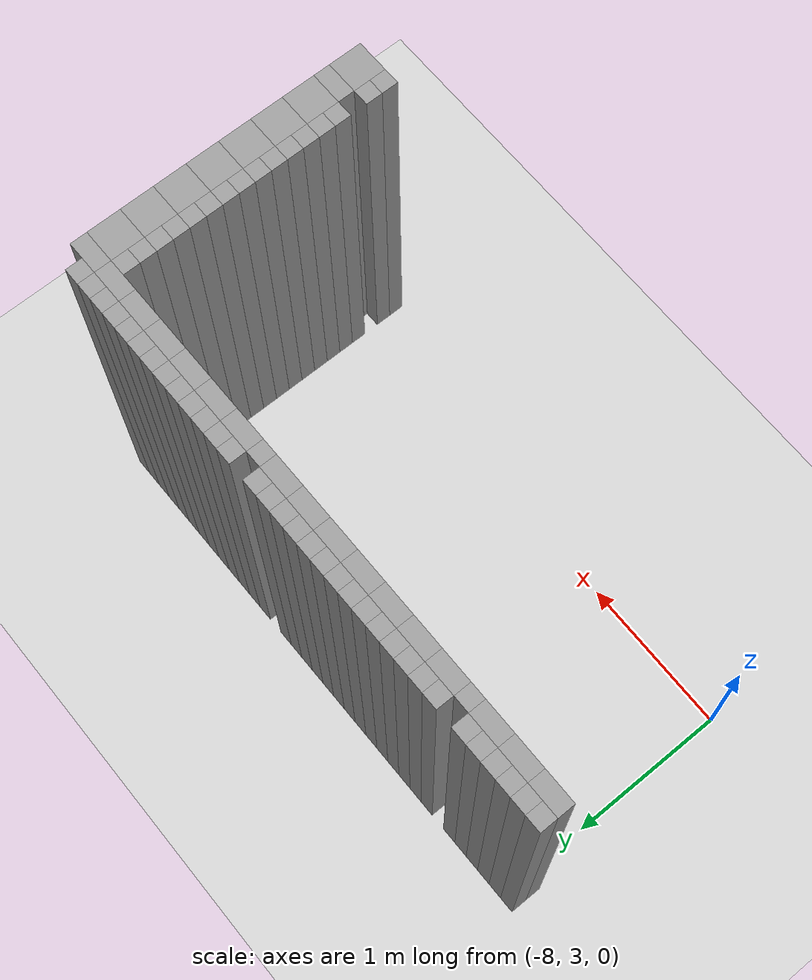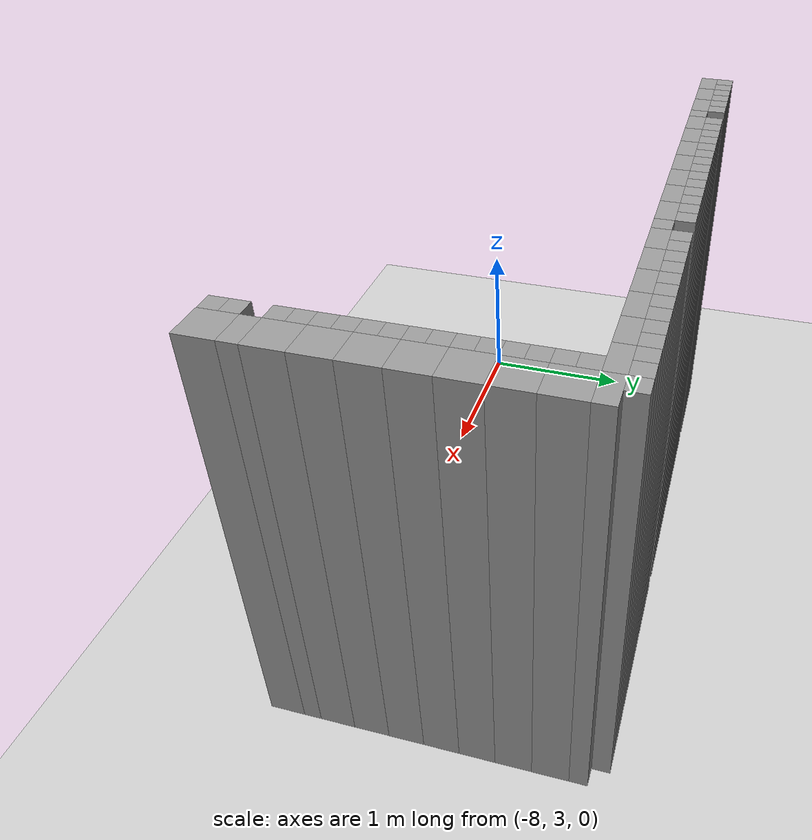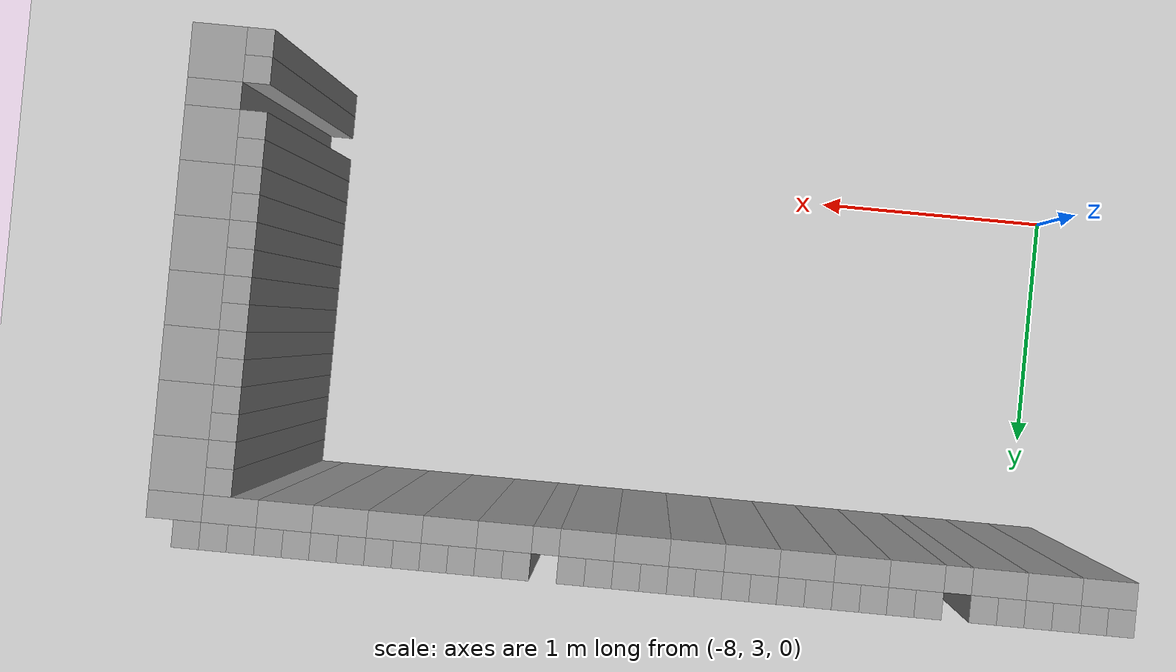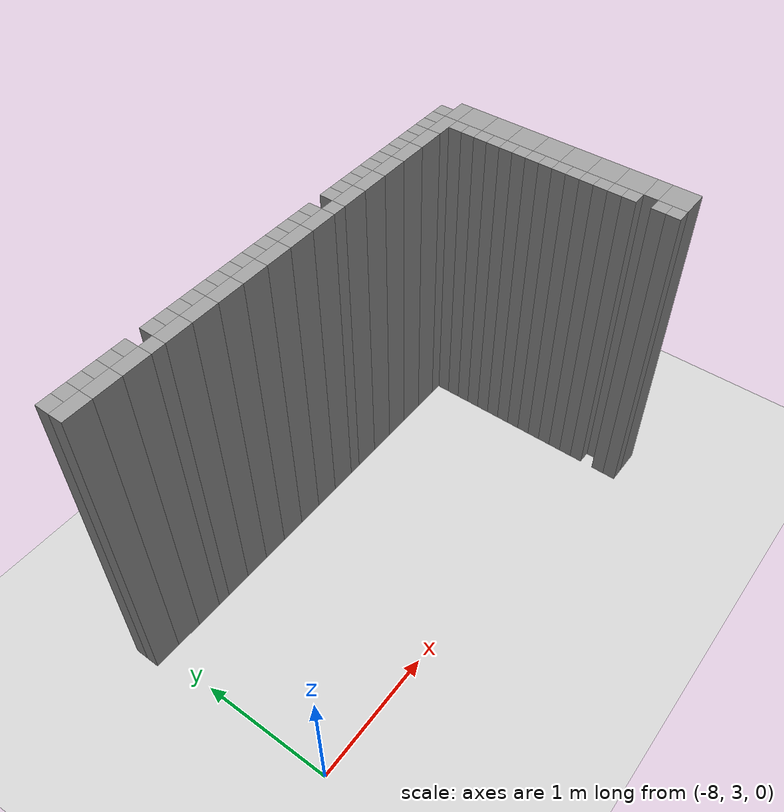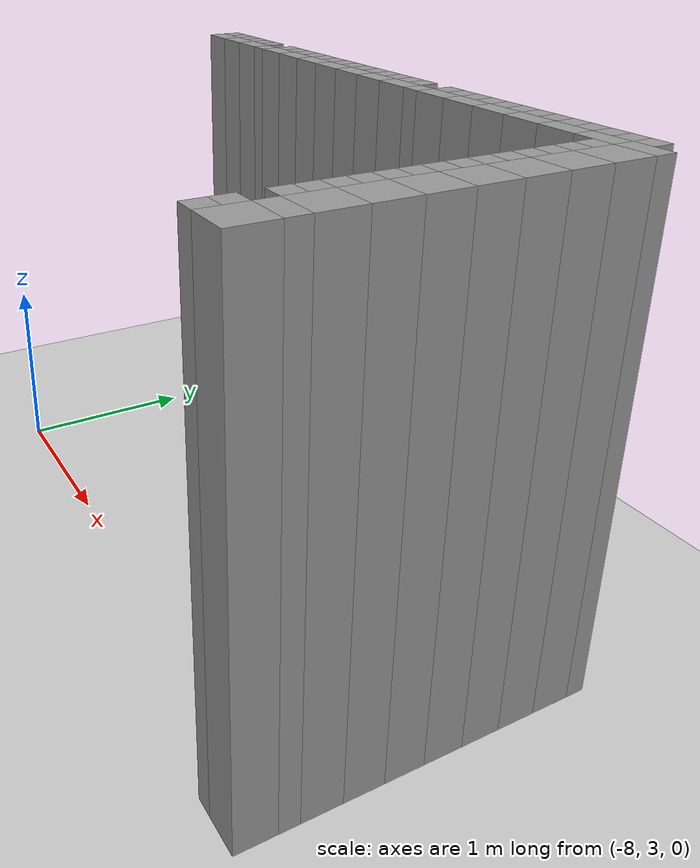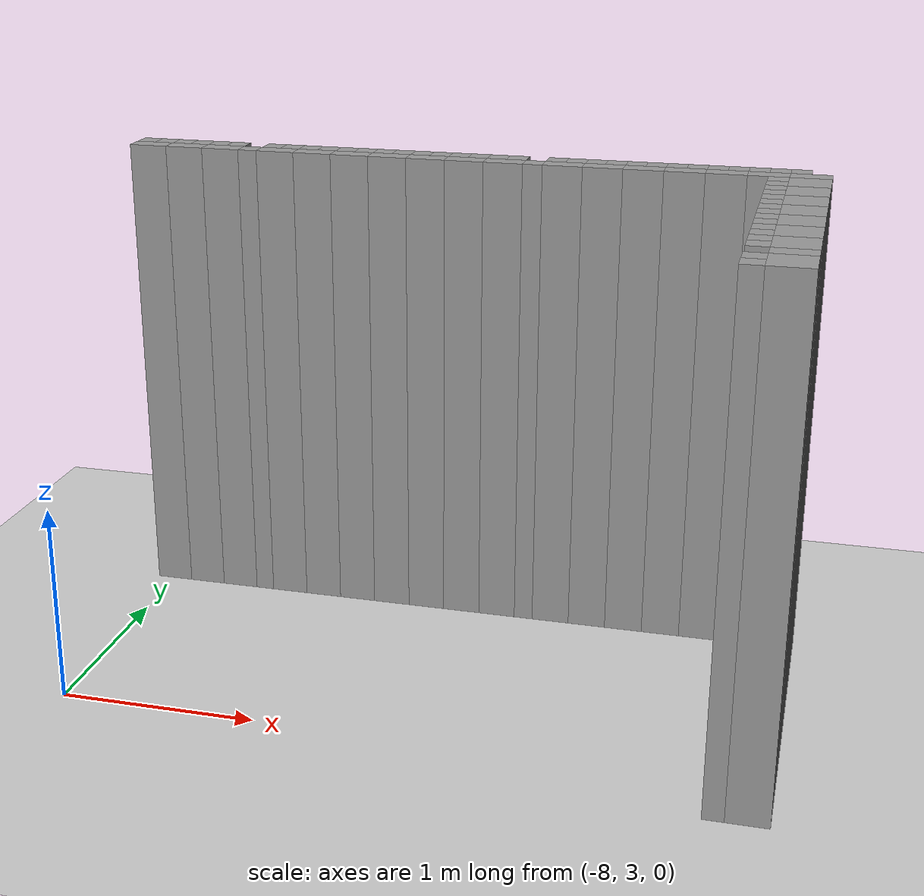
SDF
<sdf version="1.6">
 <world name="default">
  <include><uri>model://sun</uri></include>
  <include><uri>model://ground_plane</uri></include>
  <model name="stage_test">
   <static>1</static>
   <pose>-12 -12 0 0 0 0</pose>
   <link name="Wall_116">
    <pose>3.95 16.55 0 0 0 0</pose>
    <collision name="Wall_116_collision">
     <pose>0 0 1.25 0 0 0</pose>
     <geometry><box><size>0.09999999999999964 0.10000000000000142 2.5</size></box></geometry>
    </collision>
    <visual name="Wall_116_visual">
     <pose>0 0 1.25 0 0 0</pose>
     <geometry><box><size>0.09999999999999964 0.10000000000000142 2.5</size></box></geometry>
     <material>
      <script><uri>file://media/materials/scripts/gazebo.material</uri><name>Gazebo/Grey</name></script>
      <ambient>1 1 1 1</ambient>
     </material>
    </visual>
   </link>
   <link name="Wall_117">
    <pose>4.050000000000001 16.55 0 0 0 0</pose>
    <collision name="Wall_117_collision">
     <pose>0 0 1.25 0 0 0</pose>
     <geometry><box><size>0.10000000000000053 0.10000000000000142 2.5</size></box></geometry>
    </collision>
    <visual name="Wall_117_visual">
     <pose>0 0 1.25 0 0 0</pose>
     <geometry><box><size>0.10000000000000053 0.10000000000000142 2.5</size></box></geometry>
     <material>
      <script><uri>file://media/materials/scripts/gazebo.material</uri><name>Gazebo/Grey</name></script>
      <ambient>1 1 1 1</ambient>
     </material>
    </visual>
   </link>
   <link name="Wall_118">
    <pose>4.15 16.55 0 0 0 0</pose>
    <collision name="Wall_118_collision">
     <pose>0 0 1.25 0 0 0</pose>
     <geometry><box><size>0.09999999999999964 0.10000000000000142 2.5</size></box></geometry>
    </collision>
    <visual name="Wall_118_visual">
     <pose>0 0 1.25 0 0 0</pose>
     <geometry><box><size>0.09999999999999964 0.10000000000000142 2.5</size></box></geometry>
     <material>
      <script><uri>file://media/materials/scripts/gazebo.material</uri><name>Gazebo/Grey</name></script>
      <ambient>1 1 1 1</ambient>
     </material>
    </visual>
   </link>
   <link name="Wall_119">
    <pose>4.25 16.55 0 0 0 0</pose>
    <collision name="Wall_119_collision">
     <pose>0 0 1.25 0 0 0</pose>
     <geometry><box><size>0.09999999999999964 0.10000000000000142 2.5</size></box></geometry>
    </collision>
    <visual name="Wall_119_visual">
     <pose>0 0 1.25 0 0 0</pose>
     <geometry><box><size>0.09999999999999964 0.10000000000000142 2.5</size></box></geometry>
     <material>
      <script><uri>file://media/materials/scripts/gazebo.material</uri><name>Gazebo/Grey</name></script>
      <ambient>1 1 1 1</ambient>
     </material>
    </visual>
   </link>
   <link name="Wall_120">
    <pose>4.35 16.55 0 0 0 0</pose>
    <collision name="Wall_120_collision">
     <pose>0 0 1.25 0 0 0</pose>
     <geometry><box><size>0.10000000000000053 0.10000000000000142 2.5</size></box></geometry>
    </collision>
    <visual name="Wall_120_visual">
     <pose>0 0 1.25 0 0 0</pose>
     <geometry><box><size>0.10000000000000053 0.10000000000000142 2.5</size></box></geometry>
     <material>
      <script><uri>file://media/materials/scripts/gazebo.material</uri><name>Gazebo/Grey</name></script>
      <ambient>1 1 1 1</ambient>
     </material>
    </visual>
   </link>
   <link name="Wall_121">
    <pose>4.45 16.55 0 0 0 0</pose>
    <collision name="Wall_121_collision">
     <pose>0 0 1.25 0 0 0</pose>
     <geometry><box><size>0.09999999999999964 0.10000000000000142 2.5</size></box></geometry>
    </collision>
    <visual name="Wall_121_visual">
     <pose>0 0 1.25 0 0 0</pose>
     <geometry><box><size>0.09999999999999964 0.10000000000000142 2.5</size></box></geometry>
     <material>
      <script><uri>file://media/materials/scripts/gazebo.material</uri><name>Gazebo/Grey</name></script>
      <ambient>1 1 1 1</ambient>
     </material>
    </visual>
   </link>
   <link name="Wall_127">
    <pose>4.0 16.450000000000003 0 0 0 0</pose>
    <collision name="Wall_127_collision">
     <pose>0 0 1.25 0 0 0</pose>
     <geometry><box><size>0.20000000000000018 0.09999999999999787 2.5</size></box></geometry>
    </collision>
    <visual name="Wall_127_visual">
     <pose>0 0 1.25 0 0 0</pose>
     <geometry><box><size>0.20000000000000018 0.09999999999999787 2.5</size></box></geometry>
     <material>
      <script><uri>file://media/materials/scripts/gazebo.material</uri><name>Gazebo/Grey</name></script>
      <ambient>1 1 1 1</ambient>
     </material>
    </visual>
   </link>
   <link name="Wall_128">
    <pose>4.2 16.450000000000003 0 0 0 0</pose>
    <collision name="Wall_128_collision">
     <pose>0 0 1.25 0 0 0</pose>
     <geometry><box><size>0.1999999999999993 0.09999999999999787 2.5</size></box></geometry>
    </collision>
    <visual name="Wall_128_visual">
     <pose>0 0 1.25 0 0 0</pose>
     <geometry><box><size>0.1999999999999993 0.09999999999999787 2.5</size></box></geometry>
     <material>
      <script><uri>file://media/materials/scripts/gazebo.material</uri><name>Gazebo/Grey</name></script>
      <ambient>1 1 1 1</ambient>
     </material>
    </visual>
   </link>
   <link name="Wall_129">
    <pose>4.4 16.450000000000003 0 0 0 0</pose>
    <collision name="Wall_129_collision">
     <pose>0 0 1.25 0 0 0</pose>
     <geometry><box><size>0.20000000000000018 0.09999999999999787 2.5</size></box></geometry>
    </collision>
    <visual name="Wall_129_visual">
     <pose>0 0 1.25 0 0 0</pose>
     <geometry><box><size>0.20000000000000018 0.09999999999999787 2.5</size></box></geometry>
     <material>
      <script><uri>file://media/materials/scripts/gazebo.material</uri><name>Gazebo/Grey</name></script>
      <ambient>1 1 1 1</ambient>
     </material>
    </visual>
   </link>
   <link name="Wall_130">
    <pose>4.65 16.55 0 0 0 0</pose>
    <collision name="Wall_130_collision">
     <pose>0 0 1.25 0 0 0</pose>
     <geometry><box><size>0.09999999999999964 0.10000000000000142 2.5</size></box></geometry>
    </collision>
    <visual name="Wall_130_visual">
     <pose>0 0 1.25 0 0 0</pose>
     <geometry><box><size>0.09999999999999964 0.10000000000000142 2.5</size></box></geometry>
     <material>
      <script><uri>file://media/materials/scripts/gazebo.material</uri><name>Gazebo/Grey</name></script>
      <ambient>1 1 1 1</ambient>
     </material>
    </visual>
   </link>
   <link name="Wall_131">
    <pose>4.75 16.55 0 0 0 0</pose>
    <collision name="Wall_131_collision">
     <pose>0 0 1.25 0 0 0</pose>
     <geometry><box><size>0.10000000000000053 0.10000000000000142 2.5</size></box></geometry>
    </collision>
    <visual name="Wall_131_visual">
     <pose>0 0 1.25 0 0 0</pose>
     <geometry><box><size>0.10000000000000053 0.10000000000000142 2.5</size></box></geometry>
     <material>
      <script><uri>file://media/materials/scripts/gazebo.material</uri><name>Gazebo/Grey</name></script>
      <ambient>1 1 1 1</ambient>
     </material>
    </visual>
   </link>
   <link name="Wall_132">
    <pose>4.8500000000000005 16.55 0 0 0 0</pose>
    <collision name="Wall_132_collision">
     <pose>0 0 1.25 0 0 0</pose>
     <geometry><box><size>0.09999999999999964 0.10000000000000142 2.5</size></box></geometry>
    </collision>
    <visual name="Wall_132_visual">
     <pose>0 0 1.25 0 0 0</pose>
     <geometry><box><size>0.09999999999999964 0.10000000000000142 2.5</size></box></geometry>
     <material>
      <script><uri>file://media/materials/scripts/gazebo.material</uri><name>Gazebo/Grey</name></script>
      <ambient>1 1 1 1</ambient>
     </material>
    </visual>
   </link>
   <link name="Wall_133">
    <pose>4.95 16.55 0 0 0 0</pose>
    <collision name="Wall_133_collision">
     <pose>0 0 1.25 0 0 0</pose>
     <geometry><box><size>0.09999999999999964 0.10000000000000142 2.5</size></box></geometry>
    </collision>
    <visual name="Wall_133_visual">
     <pose>0 0 1.25 0 0 0</pose>
     <geometry><box><size>0.09999999999999964 0.10000000000000142 2.5</size></box></geometry>
     <material>
      <script><uri>file://media/materials/scripts/gazebo.material</uri><name>Gazebo/Grey</name></script>
      <ambient>1 1 1 1</ambient>
     </material>
    </visual>
   </link>
   <link name="Wall_134">
    <pose>5.050000000000001 16.55 0 0 0 0</pose>
    <collision name="Wall_134_collision">
     <pose>0 0 1.25 0 0 0</pose>
     <geometry><box><size>0.10000000000000053 0.10000000000000142 2.5</size></box></geometry>
    </collision>
    <visual name="Wall_134_visual">
     <pose>0 0 1.25 0 0 0</pose>
     <geometry><box><size>0.10000000000000053 0.10000000000000142 2.5</size></box></geometry>
     <material>
      <script><uri>file://media/materials/scripts/gazebo.material</uri><name>Gazebo/Grey</name></script>
      <ambient>1 1 1 1</ambient>
     </material>
    </visual>
   </link>
   <link name="Wall_135">
    <pose>5.15 16.55 0 0 0 0</pose>
    <collision name="Wall_135_collision">
     <pose>0 0 1.25 0 0 0</pose>
     <geometry><box><size>0.09999999999999964 0.10000000000000142 2.5</size></box></geometry>
    </collision>
    <visual name="Wall_135_visual">
     <pose>0 0 1.25 0 0 0</pose>
     <geometry><box><size>0.09999999999999964 0.10000000000000142 2.5</size></box></geometry>
     <material>
      <script><uri>file://media/materials/scripts/gazebo.material</uri><name>Gazebo/Grey</name></script>
      <ambient>1 1 1 1</ambient>
     </material>
    </visual>
   </link>
   <link name="Wall_136">
    <pose>5.25 16.55 0 0 0 0</pose>
    <collision name="Wall_136_collision">
     <pose>0 0 1.25 0 0 0</pose>
     <geometry><box><size>0.10000000000000053 0.10000000000000142 2.5</size></box></geometry>
    </collision>
    <visual name="Wall_136_visual">
     <pose>0 0 1.25 0 0 0</pose>
     <geometry><box><size>0.10000000000000053 0.10000000000000142 2.5</size></box></geometry>
     <material>
      <script><uri>file://media/materials/scripts/gazebo.material</uri><name>Gazebo/Grey</name></script>
      <ambient>1 1 1 1</ambient>
     </material>
    </visual>
   </link>
   <link name="Wall_137">
    <pose>5.3500000000000005 16.55 0 0 0 0</pose>
    <collision name="Wall_137_collision">
     <pose>0 0 1.25 0 0 0</pose>
     <geometry><box><size>0.09999999999999964 0.10000000000000142 2.5</size></box></geometry>
    </collision>
    <visual name="Wall_137_visual">
     <pose>0 0 1.25 0 0 0</pose>
     <geometry><box><size>0.09999999999999964 0.10000000000000142 2.5</size></box></geometry>
     <material>
      <script><uri>file://media/materials/scripts/gazebo.material</uri><name>Gazebo/Grey</name></script>
      <ambient>1 1 1 1</ambient>
     </material>
    </visual>
   </link>
   <link name="Wall_138">
    <pose>5.449999999999999 16.55 0 0 0 0</pose>
    <collision name="Wall_138_collision">
     <pose>0 0 1.25 0 0 0</pose>
     <geometry><box><size>0.09999999999999964 0.10000000000000142 2.5</size></box></geometry>
    </collision>
    <visual name="Wall_138_visual">
     <pose>0 0 1.25 0 0 0</pose>
     <geometry><box><size>0.09999999999999964 0.10000000000000142 2.5</size></box></geometry>
     <material>
      <script><uri>file://media/materials/scripts/gazebo.material</uri><name>Gazebo/Grey</name></script>
      <ambient>1 1 1 1</ambient>
     </material>
    </visual>
   </link>
   <link name="Wall_139">
    <pose>5.550000000000001 16.55 0 0 0 0</pose>
    <collision name="Wall_139_collision">
     <pose>0 0 1.25 0 0 0</pose>
     <geometry><box><size>0.10000000000000053 0.10000000000000142 2.5</size></box></geometry>
    </collision>
    <visual name="Wall_139_visual">
     <pose>0 0 1.25 0 0 0</pose>
     <geometry><box><size>0.10000000000000053 0.10000000000000142 2.5</size></box></geometry>
     <material>
      <script><uri>file://media/materials/scripts/gazebo.material</uri><name>Gazebo/Grey</name></script>
      <ambient>1 1 1 1</ambient>
     </material>
    </visual>
   </link>
   <link name="Wall_140">
    <pose>5.65 16.55 0 0 0 0</pose>
    <collision name="Wall_140_collision">
     <pose>0 0 1.25 0 0 0</pose>
     <geometry><box><size>0.09999999999999964 0.10000000000000142 2.5</size></box></geometry>
    </collision>
    <visual name="Wall_140_visual">
     <pose>0 0 1.25 0 0 0</pose>
     <geometry><box><size>0.09999999999999964 0.10000000000000142 2.5</size></box></geometry>
     <material>
      <script><uri>file://media/materials/scripts/gazebo.material</uri><name>Gazebo/Grey</name></script>
      <ambient>1 1 1 1</ambient>
     </material>
    </visual>
   </link>
   <link name="Wall_141">
    <pose>5.75 16.55 0 0 0 0</pose>
    <collision name="Wall_141_collision">
     <pose>0 0 1.25 0 0 0</pose>
     <geometry><box><size>0.10000000000000053 0.10000000000000142 2.5</size></box></geometry>
    </collision>
    <visual name="Wall_141_visual">
     <pose>0 0 1.25 0 0 0</pose>
     <geometry><box><size>0.10000000000000053 0.10000000000000142 2.5</size></box></geometry>
     <material>
      <script><uri>file://media/materials/scripts/gazebo.material</uri><name>Gazebo/Grey</name></script>
      <ambient>1 1 1 1</ambient>
     </material>
    </visual>
   </link>
   <link name="Wall_142">
    <pose>5.8500000000000005 16.55 0 0 0 0</pose>
    <collision name="Wall_142_collision">
     <pose>0 0 1.25 0 0 0</pose>
     <geometry><box><size>0.09999999999999964 0.10000000000000142 2.5</size></box></geometry>
    </collision>
    <visual name="Wall_142_visual">
     <pose>0 0 1.25 0 0 0</pose>
     <geometry><box><size>0.09999999999999964 0.10000000000000142 2.5</size></box></geometry>
     <material>
      <script><uri>file://media/materials/scripts/gazebo.material</uri><name>Gazebo/Grey</name></script>
      <ambient>1 1 1 1</ambient>
     </material>
    </visual>
   </link>
   <link name="Wall_143">
    <pose>5.949999999999999 16.55 0 0 0 0</pose>
    <collision name="Wall_143_collision">
     <pose>0 0 1.25 0 0 0</pose>
     <geometry><box><size>0.09999999999999964 0.10000000000000142 2.5</size></box></geometry>
    </collision>
    <visual name="Wall_143_visual">
     <pose>0 0 1.25 0 0 0</pose>
     <geometry><box><size>0.09999999999999964 0.10000000000000142 2.5</size></box></geometry>
     <material>
      <script><uri>file://media/materials/scripts/gazebo.material</uri><name>Gazebo/Grey</name></script>
      <ambient>1 1 1 1</ambient>
     </material>
    </visual>
   </link>
   <link name="Wall_144">
    <pose>4.550000000000001 16.450000000000003 0 0 0 0</pose>
    <collision name="Wall_144_collision">
     <pose>0 0 1.25 0 0 0</pose>
     <geometry><box><size>0.10000000000000053 0.09999999999999787 2.5</size></box></geometry>
    </collision>
    <visual name="Wall_144_visual">
     <pose>0 0 1.25 0 0 0</pose>
     <geometry><box><size>0.10000000000000053 0.09999999999999787 2.5</size></box></geometry>
     <material>
      <script><uri>file://media/materials/scripts/gazebo.material</uri><name>Gazebo/Grey</name></script>
      <ambient>1 1 1 1</ambient>
     </material>
    </visual>
   </link>
   <link name="Wall_145">
    <pose>4.700000000000001 16.450000000000003 0 0 0 0</pose>
    <collision name="Wall_145_collision">
     <pose>0 0 1.25 0 0 0</pose>
     <geometry><box><size>0.20000000000000018 0.09999999999999787 2.5</size></box></geometry>
    </collision>
    <visual name="Wall_145_visual">
     <pose>0 0 1.25 0 0 0</pose>
     <geometry><box><size>0.20000000000000018 0.09999999999999787 2.5</size></box></geometry>
     <material>
      <script><uri>file://media/materials/scripts/gazebo.material</uri><name>Gazebo/Grey</name></script>
      <ambient>1 1 1 1</ambient>
     </material>
    </visual>
   </link>
   <link name="Wall_146">
    <pose>4.9 16.450000000000003 0 0 0 0</pose>
    <collision name="Wall_146_collision">
     <pose>0 0 1.25 0 0 0</pose>
     <geometry><box><size>0.1999999999999993 0.09999999999999787 2.5</size></box></geometry>
    </collision>
    <visual name="Wall_146_visual">
     <pose>0 0 1.25 0 0 0</pose>
     <geometry><box><size>0.1999999999999993 0.09999999999999787 2.5</size></box></geometry>
     <material>
      <script><uri>file://media/materials/scripts/gazebo.material</uri><name>Gazebo/Grey</name></script>
      <ambient>1 1 1 1</ambient>
     </material>
    </visual>
   </link>
   <link name="Wall_147">
    <pose>5.1 16.450000000000003 0 0 0 0</pose>
    <collision name="Wall_147_collision">
     <pose>0 0 1.25 0 0 0</pose>
     <geometry><box><size>0.20000000000000018 0.09999999999999787 2.5</size></box></geometry>
    </collision>
    <visual name="Wall_147_visual">
     <pose>0 0 1.25 0 0 0</pose>
     <geometry><box><size>0.20000000000000018 0.09999999999999787 2.5</size></box></geometry>
     <material>
      <script><uri>file://media/materials/scripts/gazebo.material</uri><name>Gazebo/Grey</name></script>
      <ambient>1 1 1 1</ambient>
     </material>
    </visual>
   </link>
   <link name="Wall_148">
    <pose>5.3 16.450000000000003 0 0 0 0</pose>
    <collision name="Wall_148_collision">
     <pose>0 0 1.25 0 0 0</pose>
     <geometry><box><size>0.20000000000000018 0.09999999999999787 2.5</size></box></geometry>
    </collision>
    <visual name="Wall_148_visual">
     <pose>0 0 1.25 0 0 0</pose>
     <geometry><box><size>0.20000000000000018 0.09999999999999787 2.5</size></box></geometry>
     <material>
      <script><uri>file://media/materials/scripts/gazebo.material</uri><name>Gazebo/Grey</name></script>
      <ambient>1 1 1 1</ambient>
     </material>
    </visual>
   </link>
   <link name="Wall_149">
    <pose>5.5 16.450000000000003 0 0 0 0</pose>
    <collision name="Wall_149_collision">
     <pose>0 0 1.25 0 0 0</pose>
     <geometry><box><size>0.20000000000000018 0.09999999999999787 2.5</size></box></geometry>
    </collision>
    <visual name="Wall_149_visual">
     <pose>0 0 1.25 0 0 0</pose>
     <geometry><box><size>0.20000000000000018 0.09999999999999787 2.5</size></box></geometry>
     <material>
      <script><uri>file://media/materials/scripts/gazebo.material</uri><name>Gazebo/Grey</name></script>
      <ambient>1 1 1 1</ambient>
     </material>
    </visual>
   </link>
   <link name="Wall_150">
    <pose>5.700000000000001 16.450000000000003 0 0 0 0</pose>
    <collision name="Wall_150_collision">
     <pose>0 0 1.25 0 0 0</pose>
     <geometry><box><size>0.20000000000000018 0.09999999999999787 2.5</size></box></geometry>
    </collision>
    <visual name="Wall_150_visual">
     <pose>0 0 1.25 0 0 0</pose>
     <geometry><box><size>0.20000000000000018 0.09999999999999787 2.5</size></box></geometry>
     <material>
      <script><uri>file://media/materials/scripts/gazebo.material</uri><name>Gazebo/Grey</name></script>
      <ambient>1 1 1 1</ambient>
     </material>
    </visual>
   </link>
   <link name="Wall_151">
    <pose>5.9 16.450000000000003 0 0 0 0</pose>
    <collision name="Wall_151_collision">
     <pose>0 0 1.25 0 0 0</pose>
     <geometry><box><size>0.1999999999999993 0.09999999999999787 2.5</size></box></geometry>
    </collision>
    <visual name="Wall_151_visual">
     <pose>0 0 1.25 0 0 0</pose>
     <geometry><box><size>0.1999999999999993 0.09999999999999787 2.5</size></box></geometry>
     <material>
      <script><uri>file://media/materials/scripts/gazebo.material</uri><name>Gazebo/Grey</name></script>
      <ambient>1 1 1 1</ambient>
     </material>
    </visual>
   </link>
   <link name="Wall_152">
    <pose>6.15 16.55 0 0 0 0</pose>
    <collision name="Wall_152_collision">
     <pose>0 0 1.25 0 0 0</pose>
     <geometry><box><size>0.09999999999999964 0.10000000000000142 2.5</size></box></geometry>
    </collision>
    <visual name="Wall_152_visual">
     <pose>0 0 1.25 0 0 0</pose>
     <geometry><box><size>0.09999999999999964 0.10000000000000142 2.5</size></box></geometry>
     <material>
      <script><uri>file://media/materials/scripts/gazebo.material</uri><name>Gazebo/Grey</name></script>
      <ambient>1 1 1 1</ambient>
     </material>
    </visual>
   </link>
   <link name="Wall_153">
    <pose>6.25 16.55 0 0 0 0</pose>
    <collision name="Wall_153_collision">
     <pose>0 0 1.25 0 0 0</pose>
     <geometry><box><size>0.10000000000000053 0.10000000000000142 2.5</size></box></geometry>
    </collision>
    <visual name="Wall_153_visual">
     <pose>0 0 1.25 0 0 0</pose>
     <geometry><box><size>0.10000000000000053 0.10000000000000142 2.5</size></box></geometry>
     <material>
      <script><uri>file://media/materials/scripts/gazebo.material</uri><name>Gazebo/Grey</name></script>
      <ambient>1 1 1 1</ambient>
     </material>
    </visual>
   </link>
   <link name="Wall_154">
    <pose>6.3500000000000005 16.55 0 0 0 0</pose>
    <collision name="Wall_154_collision">
     <pose>0 0 1.25 0 0 0</pose>
     <geometry><box><size>0.09999999999999964 0.10000000000000142 2.5</size></box></geometry>
    </collision>
    <visual name="Wall_154_visual">
     <pose>0 0 1.25 0 0 0</pose>
     <geometry><box><size>0.09999999999999964 0.10000000000000142 2.5</size></box></geometry>
     <material>
      <script><uri>file://media/materials/scripts/gazebo.material</uri><name>Gazebo/Grey</name></script>
      <ambient>1 1 1 1</ambient>
     </material>
    </visual>
   </link>
   <link name="Wall_155">
    <pose>6.449999999999999 16.55 0 0 0 0</pose>
    <collision name="Wall_155_collision">
     <pose>0 0 1.25 0 0 0</pose>
     <geometry><box><size>0.09999999999999964 0.10000000000000142 2.5</size></box></geometry>
    </collision>
    <visual name="Wall_155_visual">
     <pose>0 0 1.25 0 0 0</pose>
     <geometry><box><size>0.09999999999999964 0.10000000000000142 2.5</size></box></geometry>
     <material>
      <script><uri>file://media/materials/scripts/gazebo.material</uri><name>Gazebo/Grey</name></script>
      <ambient>1 1 1 1</ambient>
     </material>
    </visual>
   </link>
   <link name="Wall_156">
    <pose>6.550000000000001 16.55 0 0 0 0</pose>
    <collision name="Wall_156_collision">
     <pose>0 0 1.25 0 0 0</pose>
     <geometry><box><size>0.10000000000000053 0.10000000000000142 2.5</size></box></geometry>
    </collision>
    <visual name="Wall_156_visual">
     <pose>0 0 1.25 0 0 0</pose>
     <geometry><box><size>0.10000000000000053 0.10000000000000142 2.5</size></box></geometry>
     <material>
      <script><uri>file://media/materials/scripts/gazebo.material</uri><name>Gazebo/Grey</name></script>
      <ambient>1 1 1 1</ambient>
     </material>
    </visual>
   </link>
   <link name="Wall_157">
    <pose>6.65 16.55 0 0 0 0</pose>
    <collision name="Wall_157_collision">
     <pose>0 0 1.25 0 0 0</pose>
     <geometry><box><size>0.09999999999999964 0.10000000000000142 2.5</size></box></geometry>
    </collision>
    <visual name="Wall_157_visual">
     <pose>0 0 1.25 0 0 0</pose>
     <geometry><box><size>0.09999999999999964 0.10000000000000142 2.5</size></box></geometry>
     <material>
      <script><uri>file://media/materials/scripts/gazebo.material</uri><name>Gazebo/Grey</name></script>
      <ambient>1 1 1 1</ambient>
     </material>
    </visual>
   </link>
   <link name="Wall_158">
    <pose>6.75 16.55 0 0 0 0</pose>
    <collision name="Wall_158_collision">
     <pose>0 0 1.25 0 0 0</pose>
     <geometry><box><size>0.10000000000000053 0.10000000000000142 2.5</size></box></geometry>
    </collision>
    <visual name="Wall_158_visual">
     <pose>0 0 1.25 0 0 0</pose>
     <geometry><box><size>0.10000000000000053 0.10000000000000142 2.5</size></box></geometry>
     <material>
      <script><uri>file://media/materials/scripts/gazebo.material</uri><name>Gazebo/Grey</name></script>
      <ambient>1 1 1 1</ambient>
     </material>
    </visual>
   </link>
   <link name="Wall_159">
    <pose>6.8500000000000005 16.55 0 0 0 0</pose>
    <collision name="Wall_159_collision">
     <pose>0 0 1.25 0 0 0</pose>
     <geometry><box><size>0.09999999999999964 0.10000000000000142 2.5</size></box></geometry>
    </collision>
    <visual name="Wall_159_visual">
     <pose>0 0 1.25 0 0 0</pose>
     <geometry><box><size>0.09999999999999964 0.10000000000000142 2.5</size></box></geometry>
     <material>
      <script><uri>file://media/materials/scripts/gazebo.material</uri><name>Gazebo/Grey</name></script>
      <ambient>1 1 1 1</ambient>
     </material>
    </visual>
   </link>
   <link name="Wall_160">
    <pose>6.949999999999999 16.55 0 0 0 0</pose>
    <collision name="Wall_160_collision">
     <pose>0 0 1.25 0 0 0</pose>
     <geometry><box><size>0.09999999999999964 0.10000000000000142 2.5</size></box></geometry>
    </collision>
    <visual name="Wall_160_visual">
     <pose>0 0 1.25 0 0 0</pose>
     <geometry><box><size>0.09999999999999964 0.10000000000000142 2.5</size></box></geometry>
     <material>
      <script><uri>file://media/materials/scripts/gazebo.material</uri><name>Gazebo/Grey</name></script>
      <ambient>1 1 1 1</ambient>
     </material>
    </visual>
   </link>
   <link name="Wall_161">
    <pose>7.050000000000001 16.55 0 0 0 0</pose>
    <collision name="Wall_161_collision">
     <pose>0 0 1.25 0 0 0</pose>
     <geometry><box><size>0.10000000000000053 0.10000000000000142 2.5</size></box></geometry>
    </collision>
    <visual name="Wall_161_visual">
     <pose>0 0 1.25 0 0 0</pose>
     <geometry><box><size>0.10000000000000053 0.10000000000000142 2.5</size></box></geometry>
     <material>
      <script><uri>file://media/materials/scripts/gazebo.material</uri><name>Gazebo/Grey</name></script>
      <ambient>1 1 1 1</ambient>
     </material>
    </visual>
   </link>
   <link name="Wall_162">
    <pose>7.15 16.55 0 0 0 0</pose>
    <collision name="Wall_162_collision">
     <pose>0 0 1.25 0 0 0</pose>
     <geometry><box><size>0.09999999999999964 0.10000000000000142 2.5</size></box></geometry>
    </collision>
    <visual name="Wall_162_visual">
     <pose>0 0 1.25 0 0 0</pose>
     <geometry><box><size>0.09999999999999964 0.10000000000000142 2.5</size></box></geometry>
     <material>
      <script><uri>file://media/materials/scripts/gazebo.material</uri><name>Gazebo/Grey</name></script>
      <ambient>1 1 1 1</ambient>
     </material>
    </visual>
   </link>
   <link name="Wall_163">
    <pose>7.25 16.55 0 0 0 0</pose>
    <collision name="Wall_163_collision">
     <pose>0 0 1.25 0 0 0</pose>
     <geometry><box><size>0.10000000000000053 0.10000000000000142 2.5</size></box></geometry>
    </collision>
    <visual name="Wall_163_visual">
     <pose>0 0 1.25 0 0 0</pose>
     <geometry><box><size>0.10000000000000053 0.10000000000000142 2.5</size></box></geometry>
     <material>
      <script><uri>file://media/materials/scripts/gazebo.material</uri><name>Gazebo/Grey</name></script>
      <ambient>1 1 1 1</ambient>
     </material>
    </visual>
   </link>
   <link name="Wall_164">
    <pose>7.3500000000000005 16.55 0 0 0 0</pose>
    <collision name="Wall_164_collision">
     <pose>0 0 1.25 0 0 0</pose>
     <geometry><box><size>0.09999999999999964 0.10000000000000142 2.5</size></box></geometry>
    </collision>
    <visual name="Wall_164_visual">
     <pose>0 0 1.25 0 0 0</pose>
     <geometry><box><size>0.09999999999999964 0.10000000000000142 2.5</size></box></geometry>
     <material>
      <script><uri>file://media/materials/scripts/gazebo.material</uri><name>Gazebo/Grey</name></script>
      <ambient>1 1 1 1</ambient>
     </material>
    </visual>
   </link>
   <link name="Wall_166">
    <pose>6.050000000000001 16.450000000000003 0 0 0 0</pose>
    <collision name="Wall_166_collision">
     <pose>0 0 1.25 0 0 0</pose>
     <geometry><box><size>0.10000000000000053 0.09999999999999787 2.5</size></box></geometry>
    </collision>
    <visual name="Wall_166_visual">
     <pose>0 0 1.25 0 0 0</pose>
     <geometry><box><size>0.10000000000000053 0.09999999999999787 2.5</size></box></geometry>
     <material>
      <script><uri>file://media/materials/scripts/gazebo.material</uri><name>Gazebo/Grey</name></script>
      <ambient>1 1 1 1</ambient>
     </material>
    </visual>
   </link>
   <link name="Wall_167">
    <pose>6.200000000000001 16.450000000000003 0 0 0 0</pose>
    <collision name="Wall_167_collision">
     <pose>0 0 1.25 0 0 0</pose>
     <geometry><box><size>0.20000000000000018 0.09999999999999787 2.5</size></box></geometry>
    </collision>
    <visual name="Wall_167_visual">
     <pose>0 0 1.25 0 0 0</pose>
     <geometry><box><size>0.20000000000000018 0.09999999999999787 2.5</size></box></geometry>
     <material>
      <script><uri>file://media/materials/scripts/gazebo.material</uri><name>Gazebo/Grey</name></script>
      <ambient>1 1 1 1</ambient>
     </material>
    </visual>
   </link>
   <link name="Wall_168">
    <pose>6.4 16.450000000000003 0 0 0 0</pose>
    <collision name="Wall_168_collision">
     <pose>0 0 1.25 0 0 0</pose>
     <geometry><box><size>0.1999999999999993 0.09999999999999787 2.5</size></box></geometry>
    </collision>
    <visual name="Wall_168_visual">
     <pose>0 0 1.25 0 0 0</pose>
     <geometry><box><size>0.1999999999999993 0.09999999999999787 2.5</size></box></geometry>
     <material>
      <script><uri>file://media/materials/scripts/gazebo.material</uri><name>Gazebo/Grey</name></script>
      <ambient>1 1 1 1</ambient>
     </material>
    </visual>
   </link>
   <link name="Wall_169">
    <pose>6.6 16.450000000000003 0 0 0 0</pose>
    <collision name="Wall_169_collision">
     <pose>0 0 1.25 0 0 0</pose>
     <geometry><box><size>0.20000000000000018 0.09999999999999787 2.5</size></box></geometry>
    </collision>
    <visual name="Wall_169_visual">
     <pose>0 0 1.25 0 0 0</pose>
     <geometry><box><size>0.20000000000000018 0.09999999999999787 2.5</size></box></geometry>
     <material>
      <script><uri>file://media/materials/scripts/gazebo.material</uri><name>Gazebo/Grey</name></script>
      <ambient>1 1 1 1</ambient>
     </material>
    </visual>
   </link>
   <link name="Wall_170">
    <pose>6.8 16.450000000000003 0 0 0 0</pose>
    <collision name="Wall_170_collision">
     <pose>0 0 1.25 0 0 0</pose>
     <geometry><box><size>0.20000000000000018 0.09999999999999787 2.5</size></box></geometry>
    </collision>
    <visual name="Wall_170_visual">
     <pose>0 0 1.25 0 0 0</pose>
     <geometry><box><size>0.20000000000000018 0.09999999999999787 2.5</size></box></geometry>
     <material>
      <script><uri>file://media/materials/scripts/gazebo.material</uri><name>Gazebo/Grey</name></script>
      <ambient>1 1 1 1</ambient>
     </material>
    </visual>
   </link>
   <link name="Wall_171">
    <pose>7.0 16.450000000000003 0 0 0 0</pose>
    <collision name="Wall_171_collision">
     <pose>0 0 1.25 0 0 0</pose>
     <geometry><box><size>0.20000000000000018 0.09999999999999787 2.5</size></box></geometry>
    </collision>
    <visual name="Wall_171_visual">
     <pose>0 0 1.25 0 0 0</pose>
     <geometry><box><size>0.20000000000000018 0.09999999999999787 2.5</size></box></geometry>
     <material>
      <script><uri>file://media/materials/scripts/gazebo.material</uri><name>Gazebo/Grey</name></script>
      <ambient>1 1 1 1</ambient>
     </material>
    </visual>
   </link>
   <link name="Wall_172">
    <pose>7.200000000000001 16.450000000000003 0 0 0 0</pose>
    <collision name="Wall_172_collision">
     <pose>0 0 1.25 0 0 0</pose>
     <geometry><box><size>0.20000000000000018 0.09999999999999787 2.5</size></box></geometry>
    </collision>
    <visual name="Wall_172_visual">
     <pose>0 0 1.25 0 0 0</pose>
     <geometry><box><size>0.20000000000000018 0.09999999999999787 2.5</size></box></geometry>
     <material>
      <script><uri>file://media/materials/scripts/gazebo.material</uri><name>Gazebo/Grey</name></script>
      <ambient>1 1 1 1</ambient>
     </material>
    </visual>
   </link>
   <link name="Wall_173">
    <pose>7.25 16.35 0 0 0 0</pose>
    <collision name="Wall_173_collision">
     <pose>0 0 1.25 0 0 0</pose>
     <geometry><box><size>0.10000000000000053 0.10000000000000142 2.5</size></box></geometry>
    </collision>
    <visual name="Wall_173_visual">
     <pose>0 0 1.25 0 0 0</pose>
     <geometry><box><size>0.10000000000000053 0.10000000000000142 2.5</size></box></geometry>
     <material>
      <script><uri>file://media/materials/scripts/gazebo.material</uri><name>Gazebo/Grey</name></script>
      <ambient>1 1 1 1</ambient>
     </material>
    </visual>
   </link>
   <link name="Wall_174">
    <pose>7.25 16.25 0 0 0 0</pose>
    <collision name="Wall_174_collision">
     <pose>0 0 1.25 0 0 0</pose>
     <geometry><box><size>0.10000000000000053 0.10000000000000142 2.5</size></box></geometry>
    </collision>
    <visual name="Wall_174_visual">
     <pose>0 0 1.25 0 0 0</pose>
     <geometry><box><size>0.10000000000000053 0.10000000000000142 2.5</size></box></geometry>
     <material>
      <script><uri>file://media/materials/scripts/gazebo.material</uri><name>Gazebo/Grey</name></script>
      <ambient>1 1 1 1</ambient>
     </material>
    </visual>
   </link>
   <link name="Wall_175">
    <pose>7.4 16.450000000000003 0 0 0 0</pose>
    <collision name="Wall_175_collision">
     <pose>0 0 1.25 0 0 0</pose>
     <geometry><box><size>0.1999999999999993 0.09999999999999787 2.5</size></box></geometry>
    </collision>
    <visual name="Wall_175_visual">
     <pose>0 0 1.25 0 0 0</pose>
     <geometry><box><size>0.1999999999999993 0.09999999999999787 2.5</size></box></geometry>
     <material>
      <script><uri>file://media/materials/scripts/gazebo.material</uri><name>Gazebo/Grey</name></script>
      <ambient>1 1 1 1</ambient>
     </material>
    </visual>
   </link>
   <link name="Wall_176">
    <pose>7.4 16.3 0 0 0 0</pose>
    <collision name="Wall_176_collision">
     <pose>0 0 1.25 0 0 0</pose>
     <geometry><box><size>0.1999999999999993 0.20000000000000284 2.5</size></box></geometry>
    </collision>
    <visual name="Wall_176_visual">
     <pose>0 0 1.25 0 0 0</pose>
     <geometry><box><size>0.1999999999999993 0.20000000000000284 2.5</size></box></geometry>
     <material>
      <script><uri>file://media/materials/scripts/gazebo.material</uri><name>Gazebo/Grey</name></script>
      <ambient>1 1 1 1</ambient>
     </material>
    </visual>
   </link>
   <link name="Wall_177">
    <pose>7.25 16.150000000000002 0 0 0 0</pose>
    <collision name="Wall_177_collision">
     <pose>0 0 1.25 0 0 0</pose>
     <geometry><box><size>0.10000000000000053 0.09999999999999787 2.5</size></box></geometry>
    </collision>
    <visual name="Wall_177_visual">
     <pose>0 0 1.25 0 0 0</pose>
     <geometry><box><size>0.10000000000000053 0.09999999999999787 2.5</size></box></geometry>
     <material>
      <script><uri>file://media/materials/scripts/gazebo.material</uri><name>Gazebo/Grey</name></script>
      <ambient>1 1 1 1</ambient>
     </material>
    </visual>
   </link>
   <link name="Wall_178">
    <pose>7.25 16.05 0 0 0 0</pose>
    <collision name="Wall_178_collision">
     <pose>0 0 1.25 0 0 0</pose>
     <geometry><box><size>0.10000000000000053 0.10000000000000142 2.5</size></box></geometry>
    </collision>
    <visual name="Wall_178_visual">
     <pose>0 0 1.25 0 0 0</pose>
     <geometry><box><size>0.10000000000000053 0.10000000000000142 2.5</size></box></geometry>
     <material>
      <script><uri>file://media/materials/scripts/gazebo.material</uri><name>Gazebo/Grey</name></script>
      <ambient>1 1 1 1</ambient>
     </material>
    </visual>
   </link>
   <link name="Wall_179">
    <pose>7.25 15.95 0 0 0 0</pose>
    <collision name="Wall_179_collision">
     <pose>0 0 1.25 0 0 0</pose>
     <geometry><box><size>0.10000000000000053 0.09999999999999964 2.5</size></box></geometry>
    </collision>
    <visual name="Wall_179_visual">
     <pose>0 0 1.25 0 0 0</pose>
     <geometry><box><size>0.10000000000000053 0.09999999999999964 2.5</size></box></geometry>
     <material>
      <script><uri>file://media/materials/scripts/gazebo.material</uri><name>Gazebo/Grey</name></script>
      <ambient>1 1 1 1</ambient>
     </material>
    </visual>
   </link>
   <link name="Wall_180">
    <pose>7.25 15.85 0 0 0 0</pose>
    <collision name="Wall_180_collision">
     <pose>0 0 1.25 0 0 0</pose>
     <geometry><box><size>0.10000000000000053 0.09999999999999964 2.5</size></box></geometry>
    </collision>
    <visual name="Wall_180_visual">
     <pose>0 0 1.25 0 0 0</pose>
     <geometry><box><size>0.10000000000000053 0.09999999999999964 2.5</size></box></geometry>
     <material>
      <script><uri>file://media/materials/scripts/gazebo.material</uri><name>Gazebo/Grey</name></script>
      <ambient>1 1 1 1</ambient>
     </material>
    </visual>
   </link>
   <link name="Wall_181">
    <pose>7.4 16.1 0 0 0 0</pose>
    <collision name="Wall_181_collision">
     <pose>0 0 1.25 0 0 0</pose>
     <geometry><box><size>0.1999999999999993 0.1999999999999993 2.5</size></box></geometry>
    </collision>
    <visual name="Wall_181_visual">
     <pose>0 0 1.25 0 0 0</pose>
     <geometry><box><size>0.1999999999999993 0.1999999999999993 2.5</size></box></geometry>
     <material>
      <script><uri>file://media/materials/scripts/gazebo.material</uri><name>Gazebo/Grey</name></script>
      <ambient>1 1 1 1</ambient>
     </material>
    </visual>
   </link>
   <link name="Wall_182">
    <pose>7.4 15.9 0 0 0 0</pose>
    <collision name="Wall_182_collision">
     <pose>0 0 1.25 0 0 0</pose>
     <geometry><box><size>0.1999999999999993 0.1999999999999993 2.5</size></box></geometry>
    </collision>
    <visual name="Wall_182_visual">
     <pose>0 0 1.25 0 0 0</pose>
     <geometry><box><size>0.1999999999999993 0.1999999999999993 2.5</size></box></geometry>
     <material>
      <script><uri>file://media/materials/scripts/gazebo.material</uri><name>Gazebo/Grey</name></script>
      <ambient>1 1 1 1</ambient>
     </material>
    </visual>
   </link>
   <link name="Wall_183">
    <pose>7.25 15.75 0 0 0 0</pose>
    <collision name="Wall_183_collision">
     <pose>0 0 1.25 0 0 0</pose>
     <geometry><box><size>0.10000000000000053 0.09999999999999964 2.5</size></box></geometry>
    </collision>
    <visual name="Wall_183_visual">
     <pose>0 0 1.25 0 0 0</pose>
     <geometry><box><size>0.10000000000000053 0.09999999999999964 2.5</size></box></geometry>
     <material>
      <script><uri>file://media/materials/scripts/gazebo.material</uri><name>Gazebo/Grey</name></script>
      <ambient>1 1 1 1</ambient>
     </material>
    </visual>
   </link>
   <link name="Wall_184">
    <pose>7.25 15.650000000000002 0 0 0 0</pose>
    <collision name="Wall_184_collision">
     <pose>0 0 1.25 0 0 0</pose>
     <geometry><box><size>0.10000000000000053 0.09999999999999964 2.5</size></box></geometry>
    </collision>
    <visual name="Wall_184_visual">
     <pose>0 0 1.25 0 0 0</pose>
     <geometry><box><size>0.10000000000000053 0.09999999999999964 2.5</size></box></geometry>
     <material>
      <script><uri>file://media/materials/scripts/gazebo.material</uri><name>Gazebo/Grey</name></script>
      <ambient>1 1 1 1</ambient>
     </material>
    </visual>
   </link>
   <link name="Wall_185">
    <pose>7.25 15.55 0 0 0 0</pose>
    <collision name="Wall_185_collision">
     <pose>0 0 1.25 0 0 0</pose>
     <geometry><box><size>0.10000000000000053 0.10000000000000142 2.5</size></box></geometry>
    </collision>
    <visual name="Wall_185_visual">
     <pose>0 0 1.25 0 0 0</pose>
     <geometry><box><size>0.10000000000000053 0.10000000000000142 2.5</size></box></geometry>
     <material>
      <script><uri>file://media/materials/scripts/gazebo.material</uri><name>Gazebo/Grey</name></script>
      <ambient>1 1 1 1</ambient>
     </material>
    </visual>
   </link>
   <link name="Wall_186">
    <pose>7.25 15.45 0 0 0 0</pose>
    <collision name="Wall_186_collision">
     <pose>0 0 1.25 0 0 0</pose>
     <geometry><box><size>0.10000000000000053 0.09999999999999964 2.5</size></box></geometry>
    </collision>
    <visual name="Wall_186_visual">
     <pose>0 0 1.25 0 0 0</pose>
     <geometry><box><size>0.10000000000000053 0.09999999999999964 2.5</size></box></geometry>
     <material>
      <script><uri>file://media/materials/scripts/gazebo.material</uri><name>Gazebo/Grey</name></script>
      <ambient>1 1 1 1</ambient>
     </material>
    </visual>
   </link>
   <link name="Wall_187">
    <pose>7.4 15.7 0 0 0 0</pose>
    <collision name="Wall_187_collision">
     <pose>0 0 1.25 0 0 0</pose>
     <geometry><box><size>0.1999999999999993 0.1999999999999993 2.5</size></box></geometry>
    </collision>
    <visual name="Wall_187_visual">
     <pose>0 0 1.25 0 0 0</pose>
     <geometry><box><size>0.1999999999999993 0.1999999999999993 2.5</size></box></geometry>
     <material>
      <script><uri>file://media/materials/scripts/gazebo.material</uri><name>Gazebo/Grey</name></script>
      <ambient>1 1 1 1</ambient>
     </material>
    </visual>
   </link>
   <link name="Wall_188">
    <pose>7.4 15.500000000000002 0 0 0 0</pose>
    <collision name="Wall_188_collision">
     <pose>0 0 1.25 0 0 0</pose>
     <geometry><box><size>0.1999999999999993 0.20000000000000107 2.5</size></box></geometry>
    </collision>
    <visual name="Wall_188_visual">
     <pose>0 0 1.25 0 0 0</pose>
     <geometry><box><size>0.1999999999999993 0.20000000000000107 2.5</size></box></geometry>
     <material>
      <script><uri>file://media/materials/scripts/gazebo.material</uri><name>Gazebo/Grey</name></script>
      <ambient>1 1 1 1</ambient>
     </material>
    </visual>
   </link>
   <link name="Wall_189">
    <pose>7.25 15.35 0 0 0 0</pose>
    <collision name="Wall_189_collision">
     <pose>0 0 1.25 0 0 0</pose>
     <geometry><box><size>0.10000000000000053 0.09999999999999964 2.5</size></box></geometry>
    </collision>
    <visual name="Wall_189_visual">
     <pose>0 0 1.25 0 0 0</pose>
     <geometry><box><size>0.10000000000000053 0.09999999999999964 2.5</size></box></geometry>
     <material>
      <script><uri>file://media/materials/scripts/gazebo.material</uri><name>Gazebo/Grey</name></script>
      <ambient>1 1 1 1</ambient>
     </material>
    </visual>
   </link>
   <link name="Wall_190">
    <pose>7.25 15.25 0 0 0 0</pose>
    <collision name="Wall_190_collision">
     <pose>0 0 1.25 0 0 0</pose>
     <geometry><box><size>0.10000000000000053 0.09999999999999964 2.5</size></box></geometry>
    </collision>
    <visual name="Wall_190_visual">
     <pose>0 0 1.25 0 0 0</pose>
     <geometry><box><size>0.10000000000000053 0.09999999999999964 2.5</size></box></geometry>
     <material>
      <script><uri>file://media/materials/scripts/gazebo.material</uri><name>Gazebo/Grey</name></script>
      <ambient>1 1 1 1</ambient>
     </material>
    </visual>
   </link>
   <link name="Wall_191">
    <pose>7.25 15.150000000000002 0 0 0 0</pose>
    <collision name="Wall_191_collision">
     <pose>0 0 1.25 0 0 0</pose>
     <geometry><box><size>0.10000000000000053 0.09999999999999964 2.5</size></box></geometry>
    </collision>
    <visual name="Wall_191_visual">
     <pose>0 0 1.25 0 0 0</pose>
     <geometry><box><size>0.10000000000000053 0.09999999999999964 2.5</size></box></geometry>
     <material>
      <script><uri>file://media/materials/scripts/gazebo.material</uri><name>Gazebo/Grey</name></script>
      <ambient>1 1 1 1</ambient>
     </material>
    </visual>
   </link>
   <link name="Wall_192">
    <pose>7.25 15.05 0 0 0 0</pose>
    <collision name="Wall_192_collision">
     <pose>0 0 1.25 0 0 0</pose>
     <geometry><box><size>0.10000000000000053 0.10000000000000142 2.5</size></box></geometry>
    </collision>
    <visual name="Wall_192_visual">
     <pose>0 0 1.25 0 0 0</pose>
     <geometry><box><size>0.10000000000000053 0.10000000000000142 2.5</size></box></geometry>
     <material>
      <script><uri>file://media/materials/scripts/gazebo.material</uri><name>Gazebo/Grey</name></script>
      <ambient>1 1 1 1</ambient>
     </material>
    </visual>
   </link>
   <link name="Wall_193">
    <pose>7.4 15.3 0 0 0 0</pose>
    <collision name="Wall_193_collision">
     <pose>0 0 1.25 0 0 0</pose>
     <geometry><box><size>0.1999999999999993 0.1999999999999993 2.5</size></box></geometry>
    </collision>
    <visual name="Wall_193_visual">
     <pose>0 0 1.25 0 0 0</pose>
     <geometry><box><size>0.1999999999999993 0.1999999999999993 2.5</size></box></geometry>
     <material>
      <script><uri>file://media/materials/scripts/gazebo.material</uri><name>Gazebo/Grey</name></script>
      <ambient>1 1 1 1</ambient>
     </material>
    </visual>
   </link>
   <link name="Wall_194">
    <pose>7.4 15.100000000000001 0 0 0 0</pose>
    <collision name="Wall_194_collision">
     <pose>0 0 1.25 0 0 0</pose>
     <geometry><box><size>0.1999999999999993 0.20000000000000107 2.5</size></box></geometry>
    </collision>
    <visual name="Wall_194_visual">
     <pose>0 0 1.25 0 0 0</pose>
     <geometry><box><size>0.1999999999999993 0.20000000000000107 2.5</size></box></geometry>
     <material>
      <script><uri>file://media/materials/scripts/gazebo.material</uri><name>Gazebo/Grey</name></script>
      <ambient>1 1 1 1</ambient>
     </material>
    </visual>
   </link>
   <link name="Wall_210">
    <pose>7.25 14.85 0 0 0 0</pose>
    <collision name="Wall_210_collision">
     <pose>0 0 1.25 0 0 0</pose>
     <geometry><box><size>0.10000000000000053 0.09999999999999964 2.5</size></box></geometry>
    </collision>
    <visual name="Wall_210_visual">
     <pose>0 0 1.25 0 0 0</pose>
     <geometry><box><size>0.10000000000000053 0.09999999999999964 2.5</size></box></geometry>
     <material>
      <script><uri>file://media/materials/scripts/gazebo.material</uri><name>Gazebo/Grey</name></script>
      <ambient>1 1 1 1</ambient>
     </material>
    </visual>
   </link>
   <link name="Wall_211">
    <pose>7.25 14.75 0 0 0 0</pose>
    <collision name="Wall_211_collision">
     <pose>0 0 1.25 0 0 0</pose>
     <geometry><box><size>0.10000000000000053 0.09999999999999964 2.5</size></box></geometry>
    </collision>
    <visual name="Wall_211_visual">
     <pose>0 0 1.25 0 0 0</pose>
     <geometry><box><size>0.10000000000000053 0.09999999999999964 2.5</size></box></geometry>
     <material>
      <script><uri>file://media/materials/scripts/gazebo.material</uri><name>Gazebo/Grey</name></script>
      <ambient>1 1 1 1</ambient>
     </material>
    </visual>
   </link>
   <link name="Wall_212">
    <pose>7.4 14.95 0 0 0 0</pose>
    <collision name="Wall_212_collision">
     <pose>0 0 1.25 0 0 0</pose>
     <geometry><box><size>0.1999999999999993 0.09999999999999964 2.5</size></box></geometry>
    </collision>
    <visual name="Wall_212_visual">
     <pose>0 0 1.25 0 0 0</pose>
     <geometry><box><size>0.1999999999999993 0.09999999999999964 2.5</size></box></geometry>
     <material>
      <script><uri>file://media/materials/scripts/gazebo.material</uri><name>Gazebo/Grey</name></script>
      <ambient>1 1 1 1</ambient>
     </material>
    </visual>
   </link>
   <link name="Wall_213">
    <pose>7.4 14.8 0 0 0 0</pose>
    <collision name="Wall_213_collision">
     <pose>0 0 1.25 0 0 0</pose>
     <geometry><box><size>0.1999999999999993 0.1999999999999993 2.5</size></box></geometry>
    </collision>
    <visual name="Wall_213_visual">
     <pose>0 0 1.25 0 0 0</pose>
     <geometry><box><size>0.1999999999999993 0.1999999999999993 2.5</size></box></geometry>
     <material>
      <script><uri>file://media/materials/scripts/gazebo.material</uri><name>Gazebo/Grey</name></script>
      <ambient>1 1 1 1</ambient>
     </material>
    </visual>
   </link>
  </model>
 </world>
</sdf>
